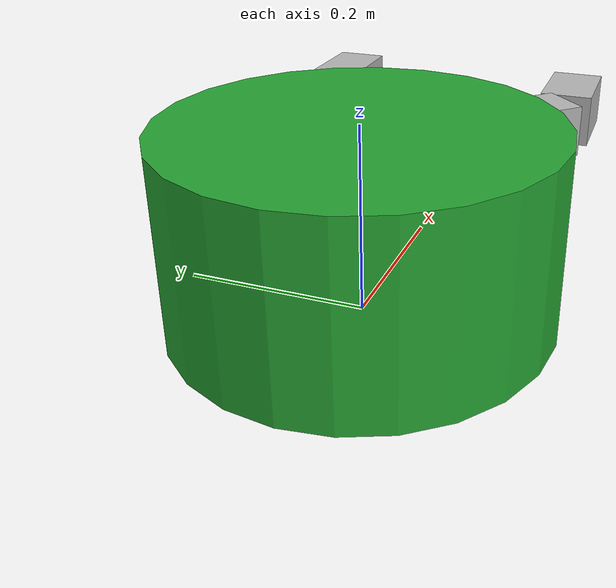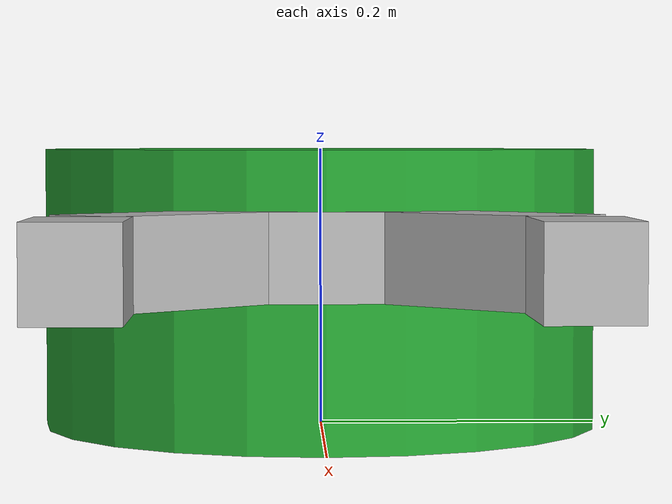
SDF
<?xml version='1.0'?>
<sdf version='1.4'>
  <!-- Robot model -->
  <model name="SDIC_Bug">
    <!-- Body elements -->
    <link name='bug'>
      <pose>0 0 .1 0 0 0</pose>
      <inertial>
	<mass>5</mass>
	<inertia>
	  <ixx>1</ixx>
	  <ixy>0</ixy>
	  <ixz>0</ixz>
	  <iyy>1</iyy>
	  <iyz>0</iyz>
	  <izz>1</izz>
	</inertia>
      </inertial>
      <collision name='collision'>
	<geometry>
	  <cylinder>
	    <radius>.2</radius>
	    <length>.2</length>
	  </cylinder>
	</geometry>
	<surface>
	  <friction>
	    <ode>
	      <mu>0.1</mu>
	      <mu2>0</mu2>
	      <slip1>0.0</slip1>
	      <slip2>0.0</slip2>
	    </ode>
	  </friction>
	</surface>
      </collision>

      <visual name='visual'>
	<geometry>
	  <cylinder>
	    <radius>.2</radius>
	    <length>.2</length>
	  </cylinder>
	</geometry>
	<material>
	  <script>
	    <uri>file://media/materials/scripts/gazebo.material</uri>
	    <name>Gazebo/Green</name>
	  </script>
	</material>
      </visual>

      <!-- Sensors -->
      <!-- Proximity sensor -->
      <sensor name="laser" type="ray">
	<pose>0 0 0.075 0 0 0 </pose>
	<ray>
	<scan>
	  <horizontal>
	    <samples>32</samples>
	    <resolution>1</resolution>
	    <min_angle>-3</min_angle>
	    <max_angle>3</max_angle>
	  </horizontal>
	</scan>
	<range>
	  <min>0.201</min>
	  <max>2.0</max>
	  <resolution>0.01</resolution>
	</range>
	<noise>
	  <type>gaussian</type>
	  <mean>0.0</mean>
	  <stddev>0.02</stddev>
	</noise>
      </ray>
      <always_on>1</always_on>
      <update_rate>25</update_rate>
      <visualize>0</visualize>
      </sensor>

      <!-- Proximity sensor -->
      <sensor name="laser_target" type="ray">
	<pose>0 0 0.25 0 0 0 </pose>
	<ray>
	<scan>
	  <horizontal>
	    <samples>32</samples>
	    <resolution>1</resolution>
	    <min_angle>-3</min_angle>
	    <max_angle>3</max_angle>
	  </horizontal>
	</scan>
	<range>
	  <min>0.26</min>
	  <max>2.5</max>
	  <resolution>0.01</resolution>
	</range>
	<noise>
	  <type>gaussian</type>
	  <mean>0.0</mean>
	  <stddev>0.02</stddev>
	</noise>
      </ray>
      <always_on>1</always_on>
      <update_rate>25</update_rate>
      <visualize>0</visualize>
      </sensor>
      <!-- Proximity sensor Gripper -->
      <sensor name="laser_gripper" type="ray">
	<pose>0.19 0 -0.02 0 0 0 </pose>
	<ray>
	<scan>
	  <horizontal>
	    <samples>16</samples>
	    <resolution>1</resolution>
	    <min_angle>-1</min_angle>
	    <max_angle>1</max_angle>
	  </horizontal>
	</scan>
	<range>
	  <min>0.0155</min>
	  <max>0.2</max>
	  <resolution>0.01</resolution>
	</range>
	<noise>
	  <type>gaussian</type>
	  <mean>0.0</mean>
	  <stddev>0.005</stddev>
	</noise>
	</ray>
	<always_on>0</always_on>
	<update_rate>25</update_rate>
	<visualize>0</visualize>
      </sensor>

    <sensor name="camera" type="camera">
      <pose>0.125 0 0.25 0 0.57 0</pose>
      <camera>
	<horizontal_fov>1.0047</horizontal_fov>
          <image>
            <width>32</width>
            <height>28</height>
          </image>
          <clip>
            <near>0.15</near>
            <far>20</far>
          </clip>
	  <noise>
            <type>gaussian</type>
            <mean>0.0</mean>
            <stddev>0.001</stddev>
          </noise>
   </camera>
      <always_on>1</always_on>
      <update_rate>30</update_rate>
      <visualize>0</visualize>
    </sensor>
    </link>
`
    <include>
      <uri>model://SDIC_Gripper</uri>
      <pose>0.17 0 .08 0 0 0</pose>
    </include>

    <joint name="arm_gripper_joint" type="revolute">
      <parent>bug</parent>
      <child>SDIC_Gripper::palm</child>
      <axis>
	<limit>
	  <lower>0</lower>
	  <upper>0</upper>
	</limit>
	<xyz>0 0 1</xyz>
      </axis>
    </joint>

    <plugin name="model_push" filename="libvel_plugin.so" />
</model>
</sdf>

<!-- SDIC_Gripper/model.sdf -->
<sdf version="1.4">
  <model name="SDIC_Gripper">
    <link name="palm">
      <pose>0.0 0.0 0.05 0 0 0</pose>
      <inertial>
        <mass>0.002</mass>
      </inertial>
      <collision name="collision">
        <geometry>
          <box>
            <size>0.06 0.1 0.06</size>
          </box>
        </geometry>
        <surface>
	  <friction>
            <ode>
              <mu>0.1</mu>
              <mu2>0</mu2>
            </ode>
          </friction>
          <contact>
            <ode>
              <max_vel>0.0</max_vel>
            </ode>
          </contact>
        </surface>
      </collision>
      <visual name="visual">
        <geometry>
          <box>
            <size>0.06 0.1 0.06</size>
          </box>
        </geometry>
      </visual>
    </link>
    <link name="left_finger">
      <pose>0.05 0.1 0.05 0 0 -0.78539</pose>
      <inertial>
        <mass>0.001</mass>
	<inertia>
	  <ixx>0.001</ixx>
	  <ixy>0</ixy>
	  <ixz>0</ixz>
	  <iyy>0.001</iyy>
	  <iyz>0</iyz>
	  <izz>0.001</izz>
	</inertia>
      </inertial>
      <collision name="collision">
        <geometry>
          <box>
            <size>0.06 0.15 0.06</size>
          </box>
        </geometry>
        <surface>
          <friction>
            <ode>
              <mu>0.1</mu>
              <mu2>0</mu2>
            </ode>
          </friction>
          <contact>
            <ode>
              <max_vel>0.0</max_vel>
            </ode>
          </contact>
        </surface>
      </collision>
      <visual name="visual">
        <geometry>
          <box>
            <size>0.06 0.15 0.06</size>
          </box>
        </geometry>
      </visual>
    </link>
    <link name="left_finger_tip">
      <pose>0.168 0.15 0.05 0 0 1.5707</pose>
      <inertial>
        <mass>0.001</mass>
	<inertia>
	  <ixx>0.001</ixx>
	  <ixy>0</ixy>
	  <ixz>0</ixz>
	  <iyy>0.001</iyy>
	  <iyz>0</iyz>
	  <izz>0.001</izz>
	</inertia>
      </inertial>
      <collision name="collision">
        <geometry>
          <box>
            <size>0.06 0.1 0.06</size>
          </box>
        </geometry>
        <surface>
          <friction>
            <ode>
              <mu>0.1</mu>
              <mu2>0</mu2>
            </ode>
          </friction>
          <contact>
            <ode>
              <max_vel>0.0</max_vel>
            </ode>
          </contact>
        </surface>
      </collision>
      <visual name="visual">
        <geometry>
          <box>
            <size>0.06 0.1 0.06</size>
          </box>
        </geometry>
      </visual>
    </link>
    <link name="right_finger">
      <pose>0.05 -0.1 0.05 0 0 .78539</pose>
      <inertial>
        <mass>0.001</mass>
	<inertia>
	  <ixx>0.001</ixx>
	  <ixy>0</ixy>
	  <ixz>0</ixz>
	  <iyy>0.001</iyy>
	  <iyz>0</iyz>
	  <izz>0.001</izz>
	</inertia>
      </inertial>
      <collision name="collision">
        <geometry>
          <box>
            <size>0.06 0.15 0.06</size>
          </box>
        </geometry>
        <surface>
          <friction>
            <ode>
              <mu>0.1</mu>
              <mu2>0</mu2>
            </ode>
          </friction>
          <contact>
            <ode>
              <max_vel>0.0</max_vel>
            </ode>
          </contact>
        </surface>
      </collision>
      <visual name="visual">
        <geometry>
          <box>
            <size>0.06 0.15 0.06</size>
          </box>
        </geometry>
      </visual>
    </link>
    <link name="right_finger_tip">
      <pose>0.168 -0.15 0.05 0 0 1.5707</pose>
      <inertial>
        <mass>0.001</mass>
	<inertia>
	  <ixx>0.001</ixx>
	  <ixy>0</ixy>
	  <ixz>0</ixz>
	  <iyy>0.001</iyy>
	  <iyz>0</iyz>
	  <izz>0.001</izz>
	</inertia>
      </inertial>
      <collision name="collision">
        <geometry>
          <box>
            <size>0.06 0.1 0.06</size>
          </box>
        </geometry>
        <surface>
          <friction>
            <ode>
              <mu>0.1</mu>
              <mu2>0</mu2>
            </ode>
          </friction>
          <contact>
            <ode>
              <max_vel>0.0</max_vel>
            </ode>
          </contact>
        </surface>
      </collision>
      <visual name="visual">
        <geometry>
          <box>
            <size>0.06 0.1 0.06</size>
          </box>
        </geometry>
      </visual>
    </link>

    <joint name="left_finger" type="revolute">
      <pose>0 -0.075 0 0 0 0</pose>
      <child>left_finger</child>
      <parent>palm</parent>
      <axis>
        <limit><lower>-0.2</lower><upper>0.4</upper></limit>
        <xyz>0 0 -1</xyz>
      </axis>
    </joint>
    <joint name="left_finger_tip" type="revolute">
      <pose>0 0.05 0 0 0 0</pose>
      <child>left_finger_tip</child>
      <parent>left_finger</parent>
      <axis>
        <limit><lower>0</lower><upper>0.4</upper></limit>
        <xyz>0 0 -1</xyz>
      </axis>
    </joint>
    <joint name="right_finger" type="revolute">
      <pose>0 0.075 0 0 0 0</pose>
      <child>right_finger</child>
      <parent>palm</parent>
      <axis>
        <limit><lower>-0.2</lower><upper>0.4</upper></limit>
        <xyz>0 0 1</xyz>
      </axis>
    </joint>
    <joint name="right_finger_tip" type="revolute">
      <pose>0 0.05 0 0 0 0</pose>
      <child>right_finger_tip</child>
      <parent>right_finger</parent>
      <axis>
        <limit><lower>0</lower><upper>0.4</upper></limit>
        <xyz>0 0 1</xyz>
      </axis>
    </joint>

  </model>
</sdf>
